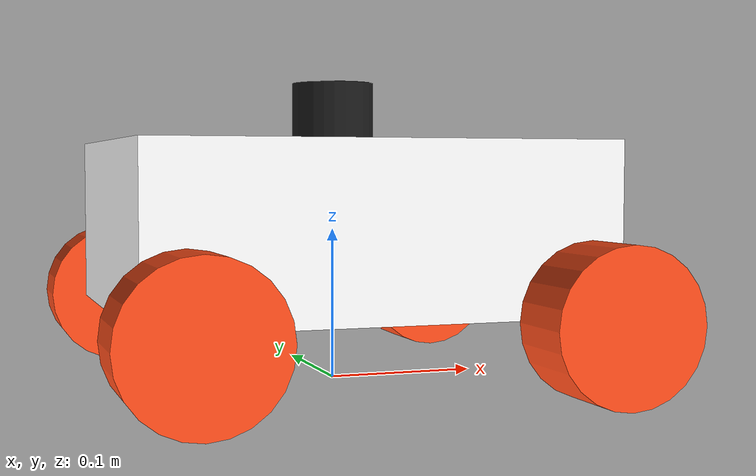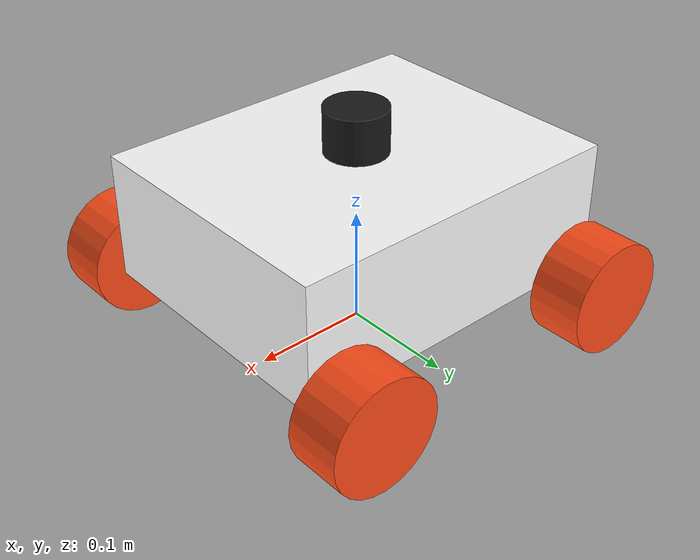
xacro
<?xml version="1.0"?>
<robot xmlns:xacro="http://www.ros.org/wiki/xacro" xmlns:gz="http://gazebosim.org/schema" name="mecanum_robot">

    <!-- 1. KHAI BÁO KÍCH THƯỚC THÂN XE -->
    <xacro:property name="chassis_length" value="0.3"/>
    <xacro:property name="chassis_width" value="0.24"/>
    <xacro:property name="chassis_height" value="0.11"/>
    <xacro:property name="chassis_mass" value="4.4"/>

    <!-- 2. KÍCH THƯỚC BÁNH XE MECANUM -->
    <xacro:property name="wheel_radius" value="0.0485"/>
    <xacro:property name="wheel_thickness" value="0.048"/>
    <xacro:property name="wheel_mass" value="0.15"/>

    <!-- 3. TỌA ĐỘ ĐẶT BÁNH (Lx + Ly = 0.125 + 0.15 = 0.275m) -->
    <xacro:property name="wheel_offset_x" value="0.125"/>
    <xacro:property name="wheel_offset_y" value="0.15"/>

    <!-- ================= CÔNG THỨC TÍNH QUÁN TÍNH TỰ ĐỘNG ================= -->
    <xacro:macro name="inertial_box" params="mass x y z *origin">
        <inertial>
            <xacro:insert_block name="origin"/>
            <mass value="${mass}" />
            <inertia ixx="${(1/12) * mass * (y*y+z*z)}" ixy="0.0" ixz="0.0"
                     iyy="${(1/12) * mass * (x*x+z*z)}" iyz="0.0"
                     izz="${(1/12) * mass * (x*x+y*y)}" />
        </inertial>
    </xacro:macro>

    <xacro:macro name="inertial_cylinder" params="mass length radius *origin">
        <inertial>
            <xacro:insert_block name="origin"/>
            <mass value="${mass}" />
            <inertia ixx="${(1/12) * mass * (3*radius*radius + length*length)}" ixy="0.0" ixz="0.0"
                     iyy="${(1/12) * mass * (3*radius*radius + length*length)}" iyz="0.0"
                     izz="${(1/2) * mass * (radius*radius)}" />
        </inertial>
    </xacro:macro>

    <!-- ================= VẬT LIỆU MÀU SẮC ================= -->
    <material name="white">
        <color rgba="1 1 1 1"/>
    </material>
    <material name="orange">
        <color rgba="1 0.3 0.1 1"/>
    </material>
    <material name="black">
        <color rgba="0.1 0.1 0.1 1"/>
    </material>
    <material name="blue">
        <color rgba="0.1 0.35 0.85 1"/>
    </material>

    <!-- ================= TÂM XE & BASE FOOTPRINT ================= -->
    <!-- Giữ base_link làm root link để bảo toàn hệ quy chiếu gz:expressed_in="base_link" trong Gazebo -->
    <link name="base_link"/>

    <joint name="base_footprint_joint" type="fixed">
        <parent link="base_link"/>
        <child link="base_footprint"/>
        <origin xyz="0 0 0" rpy="0 0 0"/>
    </joint>

    <link name="base_footprint"/>

    <!-- ================= THÂN XE HÌNH HỘP ================= -->
    <joint name="chassis_joint" type="fixed">
        <parent link="base_link"/>
        <child link="chassis"/>
        <origin xyz="0 0 ${wheel_radius + chassis_height/2}" rpy="0 0 0"/>
    </joint>

    <link name="chassis">
        <visual>
            <origin xyz="0 0 0" rpy="0 0 0"/>
            <geometry>
                <box size="${chassis_length} ${chassis_width} ${chassis_height}"/>
            </geometry>
            <material name="white"/>
        </visual>
        <collision>
            <origin xyz="0 0 0" rpy="0 0 0"/>
            <geometry>
                <box size="${chassis_length} ${chassis_width} ${chassis_height}"/>
            </geometry>
        </collision>
        <!-- Hạ trọng tâm xuống 5cm (z=-0.05) để chống lật khi tăng tốc/trượt ngang -->
        <xacro:inertial_box mass="${chassis_mass}" x="${chassis_length}" y="${chassis_width}" z="${chassis_height}">
            <origin xyz="0 0 -0.05" rpy="0 0 0"/>
        </xacro:inertial_box>
    </link>

    <!-- ================= KHUÔN ĐÚC BÁNH XE MECANUM & VẬT LÝ GAZEBO ================= -->
    <xacro:macro name="mecanum_wheel" params="prefix x_reflect y_reflect fdir1">
        <joint name="${prefix}_wheel_joint" type="continuous">
            <parent link="base_link"/>
            <child link="${prefix}_wheel"/>
            <origin xyz="${x_reflect * wheel_offset_x} ${y_reflect * wheel_offset_y} ${wheel_radius}" rpy="0 0 0"/>
            <axis xyz="0 1 0"/>
        </joint>

        <link name="${prefix}_wheel">
            <visual>
                <origin xyz="0 0 0" rpy="${pi/2} 0 0"/>
                <geometry>
                    <cylinder radius="${wheel_radius}" length="${wheel_thickness}"/>
                </geometry>
                <material name="orange"/>
            </visual>
            <!-- Va chạm hình cầu tiếp xúc 1 điểm giúp bánh xe trượt ngang mượt mà -->
            <collision>
                <origin xyz="0 0 0" rpy="0 0 0"/>
                <geometry>
                    <sphere radius="${wheel_radius}"/>
                </geometry>
            </collision>
            <xacro:inertial_cylinder mass="${wheel_mass}" length="${wheel_thickness}" radius="${wheel_radius}">
                <origin xyz="0 0 0" rpy="${pi/2} 0 0"/>
            </xacro:inertial_cylinder>
        </link>

        <!-- Cấu hình ma sát dị hướng (fdir1) chuẩn cho con lăn 45 độ trên Gazebo Harmonic -->
        <gazebo reference="${prefix}_wheel">
            <collision>
                <surface>
                    <friction>
                        <ode>
                            <mu>2.0</mu>
                            <mu2>0.0</mu2>
                            <fdir1 gz:expressed_in="base_link">${fdir1}</fdir1>
                        </ode>
                    </friction>
                    <contact>
                        <ode>
                            <kp>100000.0</kp>
                            <kd>10.0</kd>
                            <max_vel>0.1</max_vel>
                            <min_depth>0.001</min_depth>
                        </ode>
                    </contact>
                </surface>
            </collision>
        </gazebo>
    </xacro:macro>

    <!-- ================= GẮN 4 BÁNH XE VÀO 4 GÓC ================= -->
    <!-- Cặp Trước Trái & Sau Phải: Vector ma sát 1 -1 0 -->
    <xacro:mecanum_wheel prefix="front_left"  x_reflect="1"  y_reflect="1"  fdir1="1 -1 0" />
    <xacro:mecanum_wheel prefix="rear_right"  x_reflect="-1" y_reflect="-1" fdir1="1 -1 0" />

    <!-- Cặp Trước Phải & Sau Trái: Vector ma sát 1 1 0 -->
    <xacro:mecanum_wheel prefix="front_right" x_reflect="1"  y_reflect="-1" fdir1="1 1 0" />
    <xacro:mecanum_wheel prefix="rear_left"   x_reflect="-1" y_reflect="1"  fdir1="1 1 0" />

    <!-- ================= NHÚNG CÁC FILE MỞ RỘNG ================= -->
    <xacro:include filename="$(find mecanum_description)/urdf/ros2_control.xacro" />
    <xacro:include filename="$(find mecanum_description)/urdf/lidar.xacro" />
    <xacro:include filename="$(find mecanum_description)/urdf/imu.xacro" />
</robot>

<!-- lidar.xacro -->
<robot xmlns:xacro="http://www.ros.org/wiki/xacro">

    <!-- Thông số thực tế của LiDAR LDobot LD14 (96.3 x 59.8 x 38.8 mm, nặng 143g) -->
    <xacro:property name="lidar_radius" value="0.027"/>
    <xacro:property name="lidar_length" value="0.0388"/>
    <xacro:property name="lidar_mass" value="0.143"/>

    <!-- 1. Khớp nối cố định đặt LD14 trên nóc thân xe -->
    <joint name="laser_joint" type="fixed">
        <parent link="chassis"/>
        <child link="laser_frame"/>
        <origin xyz="0 0 ${(chassis_height + lidar_length)/2}" rpy="0 0 0"/>
    </joint>

    <!-- 2. Khung vật lý của LD14 -->
    <link name="laser_frame">
        <visual>
            <geometry>
                <cylinder radius="${lidar_radius}" length="${lidar_length}"/>
            </geometry>
            <material name="black"/>
        </visual>
        <collision>
            <geometry>
                <cylinder radius="${lidar_radius}" length="${lidar_length}"/>
            </geometry>
        </collision>
        <xacro:inertial_cylinder mass="${lidar_mass}" length="${lidar_length}" radius="${lidar_radius}">
            <origin xyz="0 0 0" rpy="0 0 0"/>
        </xacro:inertial_cylinder>
    </link>

    <gazebo reference="laser_frame">
        <sensor name="ld14_lidar" type="gpu_lidar">
            <pose>0 0 0 0 0 0</pose>
            <always_on>true</always_on>
            <visualize>true</visualize>
            <update_rate>6</update_rate>

            <topic>/scan</topic>
            <gz_frame_id>laser_frame</gz_frame_id>

            <ray>
                <scan>
                    <horizontal>
                        <samples>383</samples>
                        <resolution>1</resolution>
                        <min_angle>-3.14159</min_angle>
                        <max_angle>3.14159</max_angle>
                    </horizontal>
                </scan>
                <range>
                    <min>0.15</min>
                    <max>8.0</max>
                    <resolution>0.01</resolution>
                </range>
                <noise>
                    <type>gaussian</type>
                    <mean>0.0</mean>
                    <stddev>0.01</stddev>
                </noise>
            </ray>
        </sensor>
    </gazebo>

    <!-- 4. Khởi động hệ thống tính toán Cảm biến quang học của Gazebo -->
    <gazebo>
        <plugin filename="libgz-sim-sensors-system.so" name="gz::sim::systems::Sensors">
            <render_engine>ogre2</render_engine>
        </plugin>
    </gazebo>

</robot>

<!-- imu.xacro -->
<robot xmlns:xacro="http://www.ros.org/wiki/xacro">

    <!-- Thông số module GY-521 MPU6050 (21 x 16 x 3 mm, nặng ~5g) -->
    <xacro:property name="imu_length" value="0.021"/>
    <xacro:property name="imu_width" value="0.016"/>
    <xacro:property name="imu_height" value="0.003"/>
    <xacro:property name="imu_mass" value="0.005"/>

    <!-- 1. Đặt MPU6050 đúng tâm trục xoay (x=0, y=0) để triệt tiêu gia tốc hướng tâm khi xe quay -->
    <joint name="imu_joint" type="fixed">
        <parent link="base_link"/>
        <child link="imu_link"/>
        <origin xyz="0 0 ${wheel_radius + 0.01}" rpy="0 0 0"/>
    </joint>

    <!-- 2. Khung vật lý của module MPU6050 -->
    <link name="imu_link">
        <visual>
            <geometry>
                <box size="${imu_length} ${imu_width} ${imu_height}"/>
            </geometry>
            <material name="blue"/>
        </visual>
        <xacro:inertial_box mass="${imu_mass}" x="${imu_length}" y="${imu_width}" z="${imu_height}">
            <origin xyz="0 0 0" rpy="0 0 0"/>
        </xacro:inertial_box>
    </link>

    <!-- 3. Cảm biến IMU 6 trục mô phỏng đặc tính nhiễu thực tế của InvenSense MPU-6050 (100 Hz) -->
    <gazebo reference="imu_link">
        <sensor name="mpu6050" type="imu">
            <pose>0 0 0 0 0 0</pose>
            <always_on>true</always_on>
            <update_rate>100</update_rate>
            <visualize>true</visualize>
            <topic>/imu/data</topic>
            <gz_frame_id>imu_link</gz_frame_id>
            <imu>
                <angular_velocity>
                    <x>
                        <noise type="gaussian">
                            <mean>0.0</mean>
                            <stddev>0.00087</stddev>
                            <bias_mean>0.00005</bias_mean>
                            <bias_stddev>0.00001</bias_stddev>
                        </noise>
                    </x>
                    <y>
                        <noise type="gaussian">
                            <mean>0.0</mean>
                            <stddev>0.00087</stddev>
                            <bias_mean>0.00005</bias_mean>
                            <bias_stddev>0.00001</bias_stddev>
                        </noise>
                    </y>
                    <z>
                        <noise type="gaussian">
                            <mean>0.0</mean>
                            <stddev>0.00087</stddev>
                            <bias_mean>0.00005</bias_mean>
                            <bias_stddev>0.00001</bias_stddev>
                        </noise>
                    </z>
                </angular_velocity>
                <linear_acceleration>
                    <x>
                        <noise type="gaussian">
                            <mean>0.0</mean>
                            <stddev>0.039</stddev>
                            <bias_mean>0.005</bias_mean>
                            <bias_stddev>0.001</bias_stddev>
                        </noise>
                    </x>
                    <y>
                        <noise type="gaussian">
                            <mean>0.0</mean>
                            <stddev>0.039</stddev>
                            <bias_mean>0.005</bias_mean>
                            <bias_stddev>0.001</bias_stddev>
                        </noise>
                    </y>
                    <z>
                        <noise type="gaussian">
                            <mean>0.0</mean>
                            <stddev>0.039</stddev>
                            <bias_mean>0.005</bias_mean>
                            <bias_stddev>0.001</bias_stddev>
                        </noise>
                    </z>
                </linear_acceleration>
            </imu>
        </sensor>
    </gazebo>

    <!-- 4. Khởi động hệ thống tính toán IMU của Gazebo Harmonic -->
    <gazebo>
        <plugin filename="libgz-sim-imu-system.so" name="gz::sim::systems::Imu"/>
    </gazebo>

</robot>
